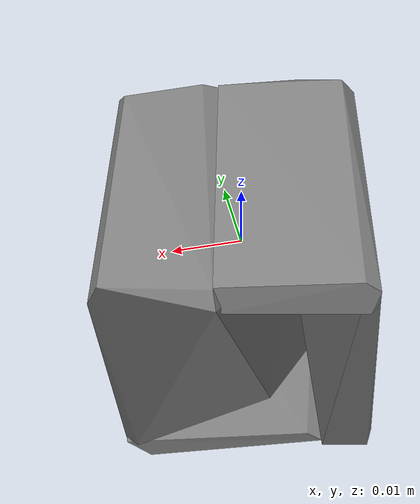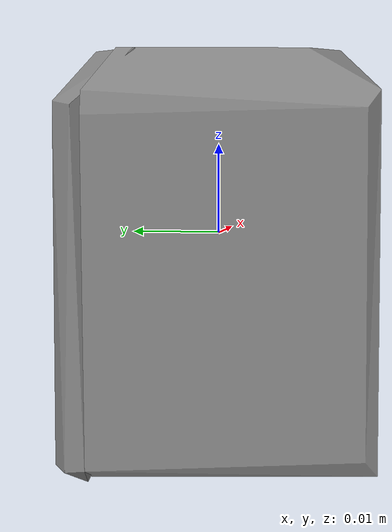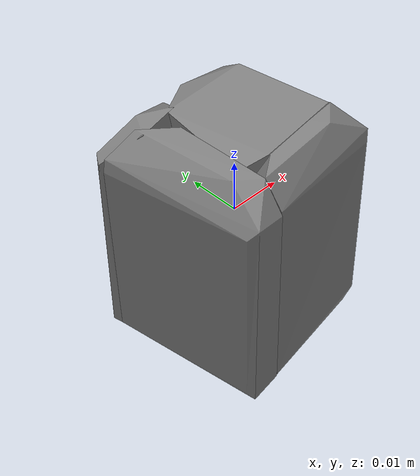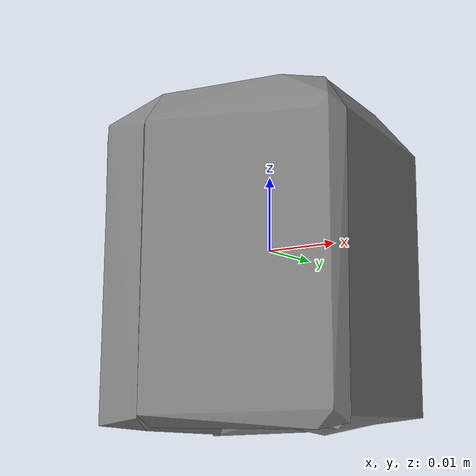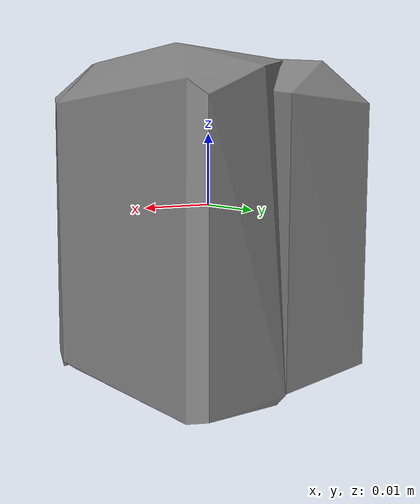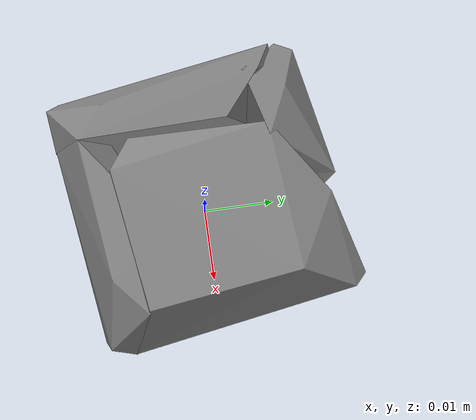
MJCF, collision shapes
<mujoco model="f_lego_duplo">
  <compiler angle="radian" />

  <asset>
    <mesh name="f_lego_duplo_visual_mesh" file="f_lego_duplo/textured.obj" />
    <mesh name="f_lego_duplo_collision_mesh_0" file="f_lego_duplo/textured_coacd_0.stl" />
    <mesh name="f_lego_duplo_collision_mesh_1" file="f_lego_duplo/textured_coacd_1.stl" />
    <mesh name="f_lego_duplo_collision_mesh_2" file="f_lego_duplo/textured_coacd_2.stl" />
    <mesh name="f_lego_duplo_collision_mesh_3" file="f_lego_duplo/textured_coacd_3.stl" />
    <texture name="f_lego_duplo_texture" type="2d" file="f_lego_duplo/texture_map.png" />
    <material name="f_lego_duplo_material" texture="f_lego_duplo_texture" />
  </asset>

  <worldbody>
    <body name="f_lego_duplo" pos="0 0 0" euler="0 0 0">
      <freejoint name="f_lego_duplo_joint" />
      <geom name="f_lego_duplo_visual_geom" type="mesh" mesh="f_lego_duplo_visual_mesh" material="f_lego_duplo_material" pos="0.028303653148494833 0.06646108978076667 -0.02360720585959244" euler="0 0 0" contype="0" conaffinity="0" group="0" />
      <geom name="f_lego_duplo_collision_geom_0" type="mesh" mesh="f_lego_duplo_collision_mesh_0" pos="0.028303653148494833 0.06646108978076667 -0.02360720585959244" euler="0 0 0" contype="1" conaffinity="1" group="3" />
      <geom name="f_lego_duplo_collision_geom_1" type="mesh" mesh="f_lego_duplo_collision_mesh_1" pos="0.028303653148494833 0.06646108978076667 -0.02360720585959244" euler="0 0 0" contype="1" conaffinity="1" group="3" />
      <geom name="f_lego_duplo_collision_geom_2" type="mesh" mesh="f_lego_duplo_collision_mesh_2" pos="0.028303653148494833 0.06646108978076667 -0.02360720585959244" euler="0 0 0" contype="1" conaffinity="1" group="3" />
      <geom name="f_lego_duplo_collision_geom_3" type="mesh" mesh="f_lego_duplo_collision_mesh_3" pos="0.028303653148494833 0.06646108978076667 -0.02360720585959244" euler="0 0 0" contype="1" conaffinity="1" group="3" />
      <inertial pos="0 0 0" euler="0 0 0" mass="0.0372" diaginertia="0.001 0.001 0.001" />
    </body>
  </worldbody>
</mujoco>
